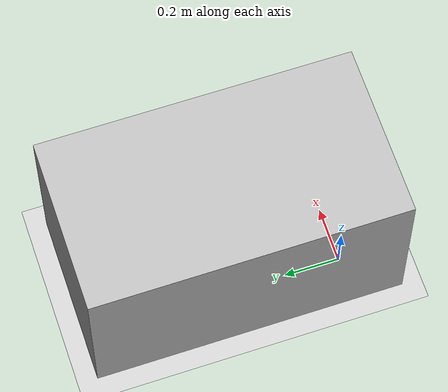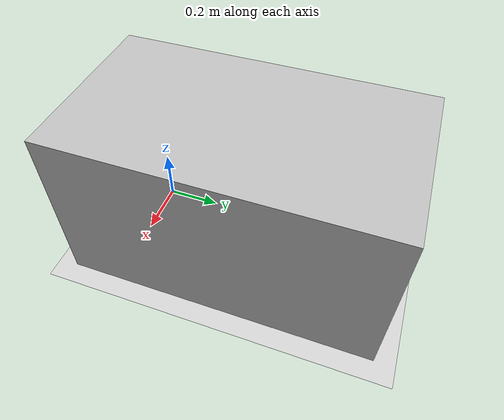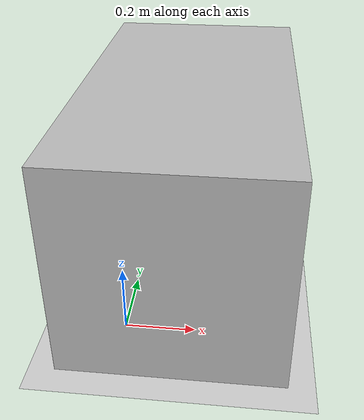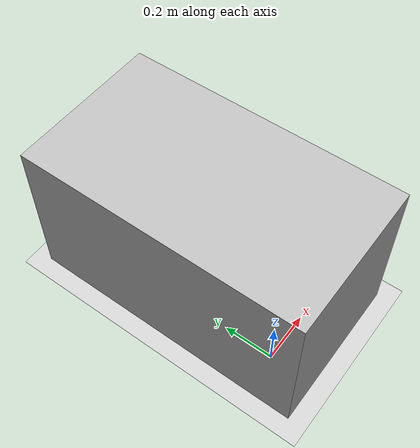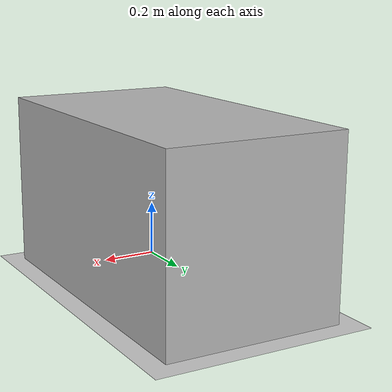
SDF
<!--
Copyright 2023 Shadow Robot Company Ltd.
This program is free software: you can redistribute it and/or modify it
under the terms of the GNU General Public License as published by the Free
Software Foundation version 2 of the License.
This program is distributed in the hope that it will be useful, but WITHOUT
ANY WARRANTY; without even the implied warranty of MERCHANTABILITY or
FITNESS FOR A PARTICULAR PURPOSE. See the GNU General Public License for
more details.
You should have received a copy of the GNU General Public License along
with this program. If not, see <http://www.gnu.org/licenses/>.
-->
<?xml version="1.0" ?>

<sdf version="1.4">
  <world name="default">
    <include>
      <uri>model://ground</uri>
      <name>ground</name>
      <pose>0.00 0.38 0.0 0 0 0</pose>
    </include>
    <include>
      <uri>model://mobile_base_rob@work4</uri>
      <name>mobile_base_rob@work4</name>
      <pose>0.15 0.38 0.309 0 0 0</pose>
    </include>
    <light type="directional" name="lab_light">
      <pose>0.86 1.96 2.5 -1.55 0 0</pose>
      <diffuse>.8 .8 .8 1</diffuse>
      <specular>.2 .2 .2 1</specular>
      <attenuation>
        <range>20</range>
        <constant>0.9</constant>
        <linear>0.01</linear>
        <quadratic>0.001</quadratic>
      </attenuation>
      <direction>0 0 -1</direction>
      <cast_shadows>true</cast_shadows>
    </light>
    <physics type="ode">
      <gravity>0.000000 0.000000 -9.810000</gravity>
      <ode>
        <solver>
          <type>quick</type>
          <iters>100</iters>
          <precon_iters>0</precon_iters>
          <sor>1.000000</sor>
        </solver>
        <constraints>
          <cfm>0.000000</cfm>
          <erp>0.500000</erp>
          <contact_max_correcting_vel>1000.000000</contact_max_correcting_vel>
          <contact_surface_layer>0.00000</contact_surface_layer>
        </constraints>
      </ode>
      <real_time_factor>1.0</real_time_factor>
      <max_step_size>0.001000</max_step_size>
    </physics>
    <scene>
      <ambient>0.4 0.4 0.4 1</ambient>
      <background>0.7 0.7 1 1</background>
      <shadows>1</shadows>
    </scene>
    <gui fullscreen='0'>
      <camera name='user_camera'>
        <pose frame=''>2.8784 4.2586 1.43117 0 0.083643 -2.30699</pose>
        <view_controller>orbit</view_controller>
      </camera>
    </gui>
  </world>
</sdf>

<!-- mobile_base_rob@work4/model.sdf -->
<sdf version="1.4">
  <model name="mobile_base_rob@work4">
    <static>true</static>
    <link name="link">
      <pose>0 0 0 0 0 0</pose>
      <collision name="collision">
        <geometry>
          <box>
            <size>0.62 1.12 0.62</size>
          </box>
        </geometry>
      </collision>
      <visual name="visual">
        <geometry>
          <box>
            <size>0.62 1.12 0.62</size>
          </box>
        </geometry>
      </visual>
    </link>
  </model>
</sdf>
